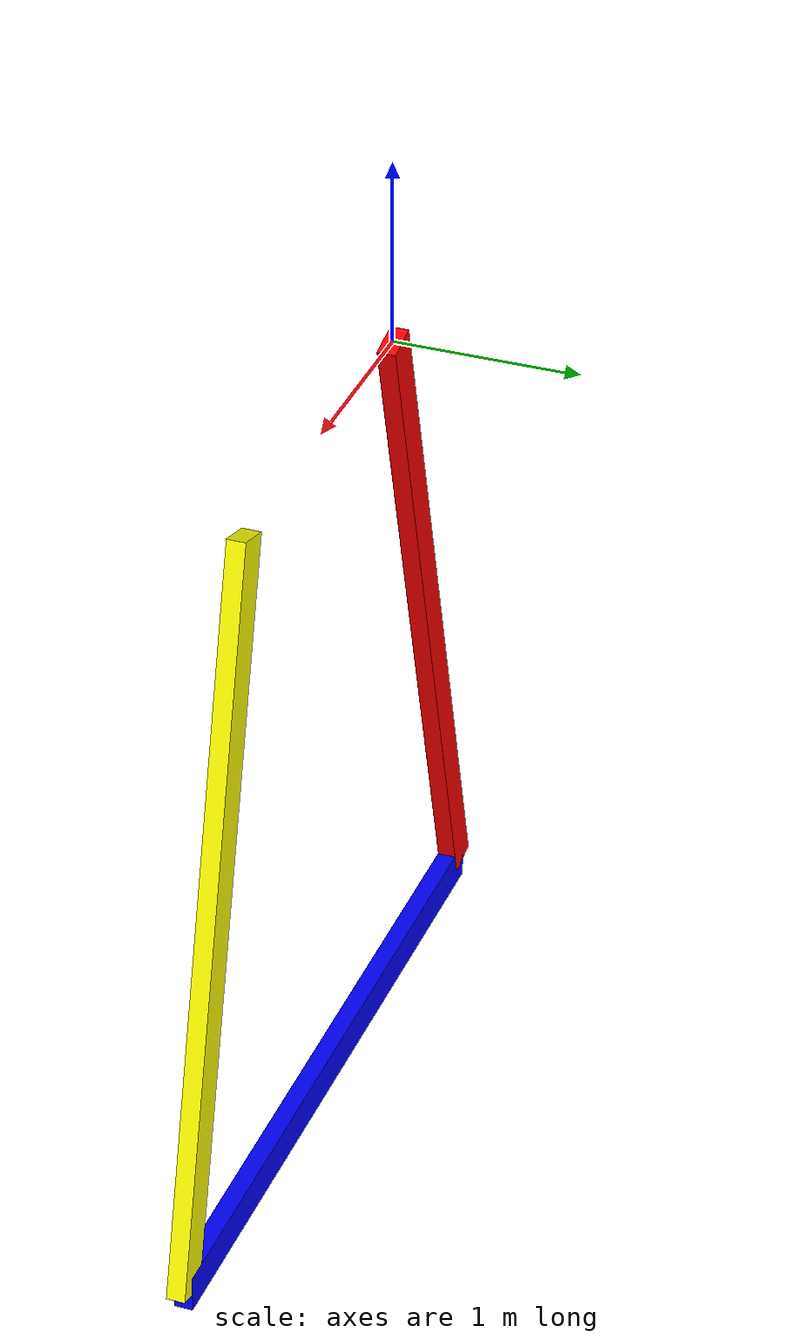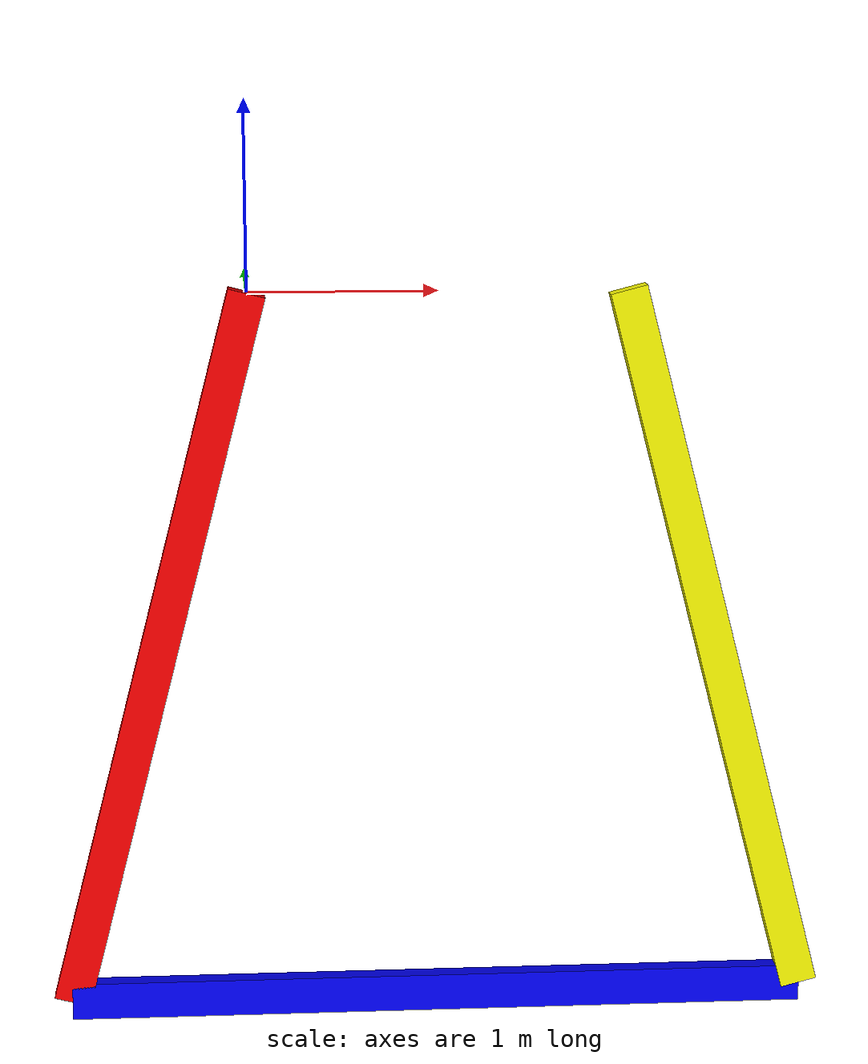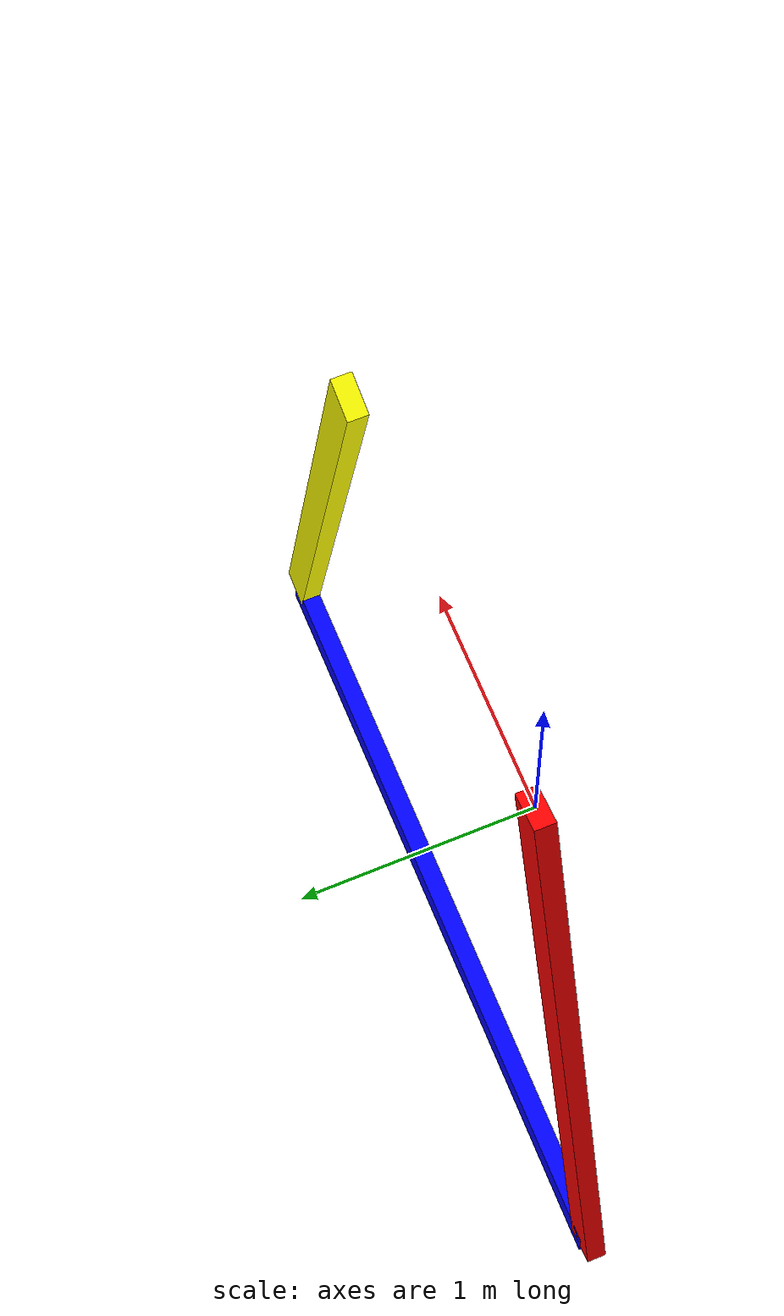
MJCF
<mujoco model="fourbar_mj">
  <compiler angle="radian" inertiafromgeom="false"/>
  <option timestep="0.001" gravity="0 0 -9.81" integrator="implicitfast" solver="Newton" iterations="100"/>

  <worldbody>
    <body name="linkA" pos="0 0 0" euler="0 1.8234765819 0">
      <joint name="joint_WA" type="hinge" axis="0 1 0" ref="1.8234765819" damping="0"/>
      <inertial pos="2 0 0" mass="20" diaginertia="0.0833333333 26.6666666667 26.6666666667"/>
      <geom name="geomA" type="box" pos="2 0 0" size="2 0.05 0.1" contype="0" conaffinity="0" rgba="1 0 0 1"/>

      <body name="linkB" pos="4 0 0" euler="0 -1.8234765819 0">
        <joint name="joint_AB" type="hinge" axis="0 1 0" ref="-1.8234765819" damping="0"/>
        <inertial pos="2 0 0" mass="20" diaginertia="0.0833333333 26.6666666667 26.6666666667"/>
        <geom name="geomB" type="box" pos="2 0 0" size="2 0.05 0.1" contype="0" conaffinity="0" rgba="0 0 1 1"/>
      </body>
    </body>

    <body name="linkC" pos="2 0 0" euler="0 1.3181160717 0">
      <joint name="joint_WC" type="hinge" axis="0 1 0" ref="1.3181160717" damping="0"/>
      <inertial pos="2 0 0" mass="20" diaginertia="0.0833333333 26.6666666667 26.6666666667"/>
      <geom name="geomC" type="box" pos="2 0 0" size="2 0.05 0.1" contype="0" conaffinity="0" rgba="1 1 0 1"/>
    </body>
  </worldbody>

  <equality>
    <connect name="bc_connect" body1="linkB" body2="linkC" anchor="4 0 0" solimp="0.99 0.999 0.001" solref="0.002 1"/>
  </equality>
</mujoco>
